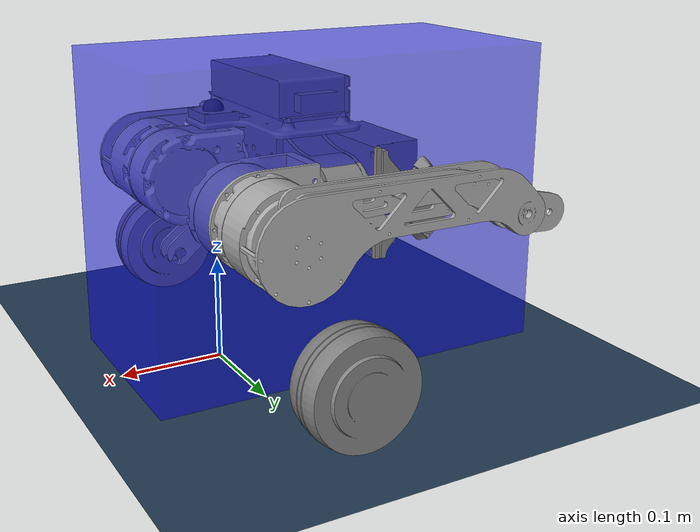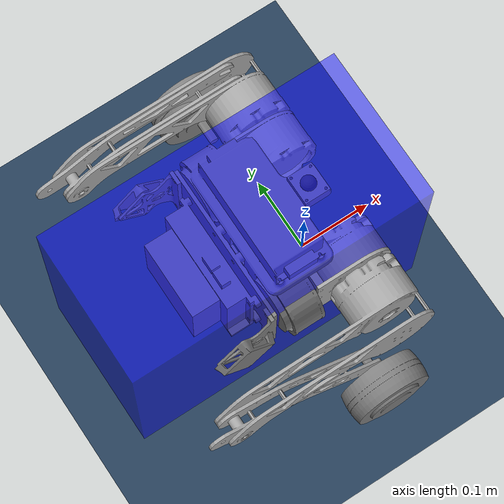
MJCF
<mujoco model="flamingo">
    <compiler angle="radian" />
    <option timestep="0.001" gravity="0 0 -9.81" iterations="50" solver="Newton" jacobian="dense" integrator="implicitfast"/>

    <visual>
        <headlight diffuse="0.6 0.6 0.6" ambient="0.3 0.3 0.3" specular="0 0 0"/>
        <rgba haze="0.15 0.25 0.35 1"/>
        <global azimuth="120" elevation="-20"/>
    </visual>

    <default>
        <geom solref="0.002 1.5" friction="1.0 0.2 0.2"/>
        <equality solref="0.002 1.5"/>

        <default class="visual">
            <geom type="mesh" contype="0" conaffinity="0" group="2"/>
        </default>
        <default class="collision">
            <geom group="3"/>
        </default>
        <default class="collision_mesh">
            <geom contype="1" conaffinity="1" group="1"/>
        </default>

        <default class="hip">
            <geom solref="0.004 1"/>
            <joint damping="1.0" stiffness="0.0" frictionloss="0.01" armature="0.1" actuatorfrclimited="true" actuatorfrcrange="-23 23"/>
            <position kp="55" kv="0.5" gear="1" />
        </default>
        <default class="shoulder">
            <geom solref="0.004 1"/>
            <joint damping="1.0" stiffness="0.0" frictionloss="0.01" armature="0.1" actuatorfrclimited="true" actuatorfrcrange="-23 23"/>
            <position kp="55" kv="0.5" gear="1" />
        </default>
        <default class="leg">
            <geom solref="0.004 1"/>
            <joint damping="1.0" stiffness="0.0" frictionloss="0.01" armature="0.1" actuatorfrclimited="true" actuatorfrcrange="-23 23"/>
            <position kp="55" kv="0.5" gear="1" />
        </default>
        <default class="wheels">
            <geom solref="0.004 1"/>
            <joint damping="1.0" stiffness="0.0" frictionloss="0.01" armature="0.01" actuatorfrclimited="true" actuatorfrcrange="-6 6"/>
            <velocity kv="0.5" gear="1" />
        </default>
    </default>

    <worldbody>
    <geom name="groundplane" pos="0 0 0" size="140 140 0.1" type="plane" material="MatPlane" condim="3" friction="1.0 1.0 0.01" solref="0.002 1" solimp="0.9 0.95 0.05"/>
        <!-- Floating Box -->
        <geom name="floating_box" pos="-0.1 0 0.15" size="0.2 0.1 0.15" type="box" rgba="0 0 1 0.5" />

        <body name="base_link" pos="0.0 0.0 0.2461">
            <inertial pos="-0.10284789 0.00005970 -0.06484655" mass="4.00040000" diaginertia="0.02545642 0.02209148 0.02540873" />
            <geom size="0.065 0.09 0.11" pos="-0.13 0 -0.032" type="box" rgba="0.4 0.4 0.4 1" class="collision"/>
            <geom type="mesh" mesh="base_link_mesh" rgba="0.5 0.5 0.5 1" contype="0" conaffinity="0" class="visual"/>
            <site name="base_link_site" pos="0 0 0" size="0.01" rgba="0.2 0.2 0.2 1" />
            <joint name="base_free_joint" type="free" damping="0.0" />
            <site name='imu' size='0.01' pos='0.0 0 0.0'/>

            <!-- left_hip_link 설정 -->
            <body name="left_hip_link" pos="-0.0545 0.08 -0.0803" quat="0.499998 0.5 0.500002 0.5">
                <inertial pos="-0.00017732 1.322e-05 0.00863621" quat="0.999986 -0.00127084 0.00516793 0.000162936" mass="0.768" diaginertia="0.00107545 0.000807431 0.000662285" />
                <joint name="left_hip_joint" pos="0 0 0" axis="0 0 1" limited="true" range="-1.5708 1.5708" />
                <geom type="mesh" rgba="0.6627 0.6627 0.6627 1" mesh="left_hip_link_mesh" class="collision_mesh"/>

                <body name="left_shoulder_link" pos="0.0265 0 0.06" quat="0.707105 0 0.707108 0">
                    <inertial pos="0.128393 0.00128771 0.0585423" quat="-0.0739802 0.663819 -0.037255 0.743292" mass="0.926" diaginertia="0.00520947 0.00517149 0.000906348" />
                    <joint name="left_shoulder_joint" pos="0 0 0" axis="0 0 1" limited="true" range="-1.5708 1.5708" />
                    <geom type="mesh" rgba="0.6627 0.6627 0.6627 1" mesh="left_shoulder_link_mesh" class="collision_mesh"/>

                    <body name="left_leg_link" pos="0.22 0 0.07005">
                        <inertial pos="-0.0777795 -0.0358886 -0.00121501" quat="-0.188926 0.679076 0.190945 0.683157" mass="0.187" diaginertia="0.000994622 0.000972557 3.84311e-05"/>
                        <joint name="left_leg_joint" pos="0 0 0" axis="0 0 1" limited="true" range="-0.0872665 1.5708" />
                        <geom type="mesh" rgba="0.6627 0.6627 0.6627 1" mesh="left_leg_link_mesh" class="collision_mesh"/>

                        <body name="left_wheel_link" pos="-0.18883 -0.11289 0.039877">
                            <inertial pos="0.00010518 -5.86e-05 -0.00086593" quat="0.610878 0.356115 -0.610883 0.356136" mass="1.515" diaginertia="0.00182156 0.0013561 0.00135552"/>
                            <joint name="left_wheel_joint" pos="0 0 0" axis="0 0 1" type="hinge" limited="false" />
                            <geom size="0.053 0.020375" type="cylinder" rgba="0.792157 0.819608 0.933333 1" material="rubber" class="collision"/>
                            <geom type="mesh" mesh="left_wheel_link_mesh" rgba="0.5 0.5 0.5 1" contype="0" conaffinity="0" class="visual"/>
                        </body>
                    </body>
                </body>
            </body>
            <body name="right_hip_link" pos="-0.0545 -0.08 -0.0803" quat="0.499998 0.5 0.500002 0.5">
                <inertial pos="0.00017679 -1.322e-05 0.008636" quat="0.999986 0.00127084 -0.00516793 0.000162936" mass="0.768" diaginertia="0.00107545 0.000807431 0.000662285"/>
                <joint name="right_hip_joint" pos="0 0 0" axis="0 0 1" limited="true" range="-0.0872665 1.5708"/>
                <geom type="mesh" rgba="0.6627 0.6627 0.6627 1" mesh="right_hip_link_mesh" class="collision_mesh"/>

                <body name="right_shoulder_link" pos="-0.0265 0 0.06" quat="-2.59734e-06 0.707105 -2.59735e-06 -0.707108">
                    <inertial pos="0.1287 -0.00147834 0.0586879" quat="0.0759351 0.66374 0.0388159 0.743086" mass="0.926" diaginertia="0.00521008 0.00517207 0.000906255" />
                    <joint name="right_shoulder_joint" pos="0 0 0" axis="0 0 -1" limited="true" range="-3.1408 1.5708"/>
                    <geom type="mesh" rgba="0.6627 0.6627 0.6627 1" mesh="right_shoulder_link_mesh" class="collision_mesh"/>

                    <body name="right_leg_link" pos="0.22 0 0.07005">
                        <inertial pos="-0.0777769 0.0358909 0.00166798" quat="0.188926 0.679076 -0.190945 0.683157" mass="0.187" diaginertia="0.000994622 0.000972557 3.84311e-05"/>
                        <joint name="right_leg_joint" pos="0 0 0" axis="0 0 -1" limited="true" range="-0.0872665 1.5708"/>
                        <geom type="mesh" rgba="0.6627 0.6627 0.6627 1" mesh="right_leg_link_mesh" class="collision_mesh"/>

                        <body name="right_wheel_link" pos="-0.18883 0.11289 0.039877">
                            <inertial pos="-4.486e-05 -0.00011173 -0.00086593" quat="0.133728 0.694354 -0.13371 0.694342" mass="1.52" diaginertia="0.00182758 0.00136057 0.00135999"/>
                            <joint name="right_wheel_joint" pos="0 0 0" axis="0 0 -1" type="hinge" limited="false"/>
                            <geom size="0.053 0.020375" type="cylinder" rgba="0.792157 0.819608 0.933333 1" material="rubber" class="collision"/>
                            <geom type="mesh" mesh="right_wheel_link_mesh" rgba="0.5 0.5 0.5 1" contype="0" conaffinity="0" class="visual"/>
                        </body>
                    </body>
                </body>
            </body>
        </body>
    </worldbody>

    <asset>
        <texture type="skybox" builtin="gradient" rgb1="0.3 0.5 0.7" rgb2="0 0 0" width="512" height="3072"/>
        <texture type="2d" name="groundplane" builtin="checker" mark="edge" rgb1="0.2 0.3 0.4" rgb2="0.1 0.2 0.3"
        markrgb="0.8 0.8 0.8" width="300" height="300"/>
        <material name="MatPlane" texture="groundplane" texuniform="true" texrepeat="5 5" reflectance="0.2"/>
        <material name="rubber" rgba="0.4 0.4 0.4 1" shininess="0.5" reflectance="0.2"/>

        <mesh name="base_link_mesh" file="./meshes/base_link.STL"/>
        <mesh name="left_hip_link_mesh" file="./meshes/left_hip_link.STL" />
        <mesh name="left_shoulder_link_mesh" file="./meshes/left_shoulder_link.STL" />
        <mesh name="left_leg_link_mesh" file="./meshes/left_leg_link.STL" />
        <mesh name="left_wheel_link_mesh" file="./meshes/left_wheel_link.STL" />
        <mesh name="right_hip_link_mesh" file="./meshes/right_hip_link.STL" />
        <mesh name="right_shoulder_link_mesh" file="./meshes/right_shoulder_link.STL" />
        <mesh name="right_leg_link_mesh" file="./meshes/right_leg_link.STL" />
        <mesh name="right_wheel_link_mesh" file="./meshes/right_wheel_link.STL" />
    </asset>

    <actuator>
        <position class="hip" name="left_hip_joint" joint="left_hip_joint"  ctrllimited="true" ctrlrange="-1.5708 1.5708" />
        <position class="hip" name="right_hip_joint" joint="right_hip_joint"  ctrllimited="true" ctrlrange="-1.5708 1.5708" />
        <position class="shoulder" name="left_shoulder_joint" joint="left_shoulder_joint" ctrllimited="true" ctrlrange="-1.5708 1.5708" />
        <position class="shoulder" name="right_shoulder_joint" joint="right_shoulder_joint" ctrllimited="true" ctrlrange="-1.5708 1.5708" />
        <position class="leg" name="left_leg_joint" joint="left_leg_joint"  ctrllimited="true" ctrlrange="-0.0872665 1.5708" />
        <position class="leg" name="right_leg_joint" joint="right_leg_joint" ctrllimited="true" ctrlrange="-0.0872665 1.5708" />

        <velocity class="wheels" name="left_wheel_joint" joint="left_wheel_joint" ctrllimited="true" ctrlrange="-25 25"/>
        <velocity class="wheels" name="right_wheel_joint" joint="right_wheel_joint" ctrllimited="true" ctrlrange="-25 25"/>
    </actuator>

    <sensor>
        <framequat name="orientation" objtype="site" noise="0.1" objname="imu"/>
        <framepos name="position" objtype="site" noise="0.1" objname="imu"/>
        <gyro name="angular-velocity" site="imu" noise="0.2" cutoff="34.9"/>
        <velocimeter name="linear-velocity" site="imu" noise="0.1" cutoff="30"/>
        <accelerometer name="linear-acceleration" site="imu" noise="0.05" cutoff="157"/>
        <magnetometer name="magnetometer" site="imu"/>
    </sensor>
</mujoco>
